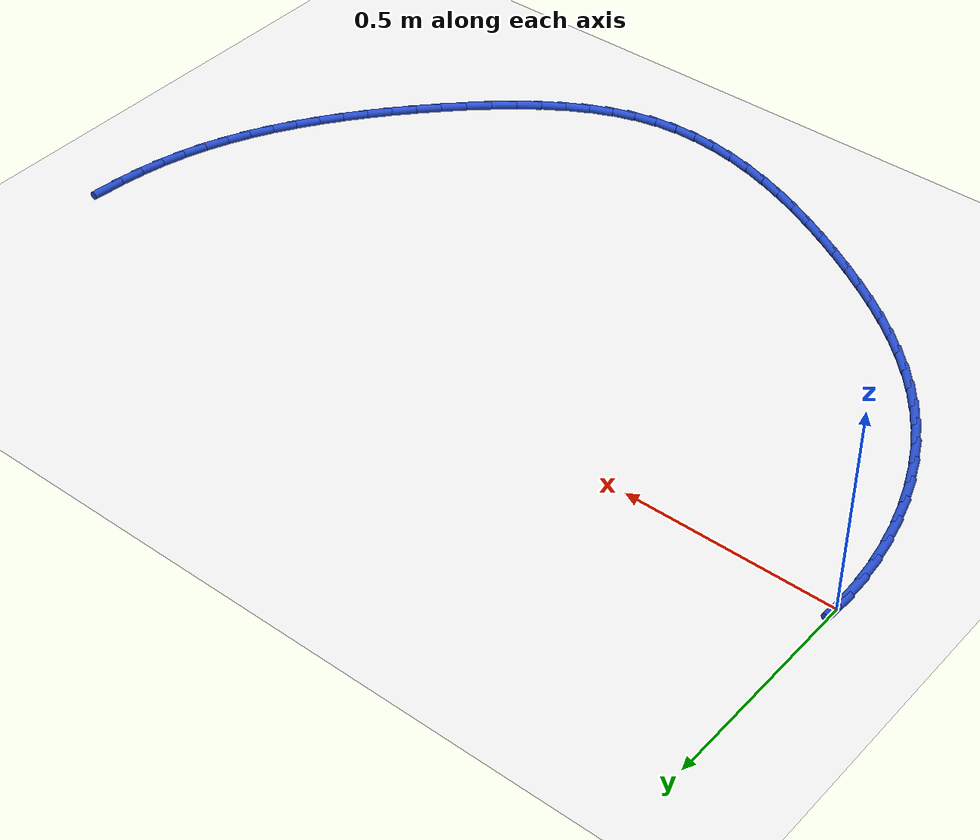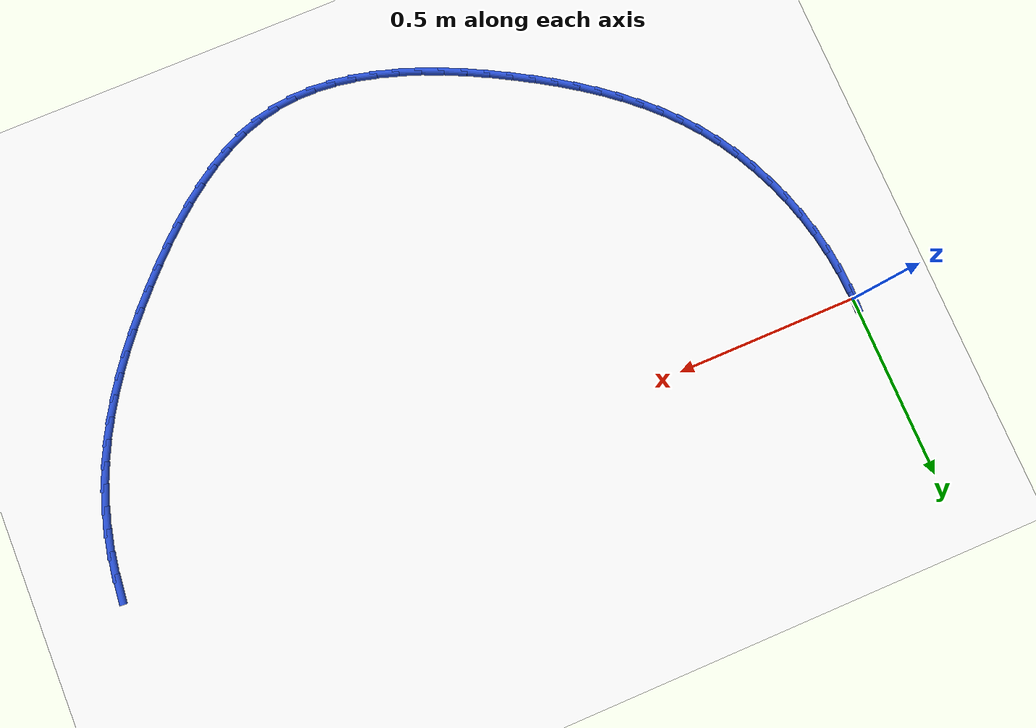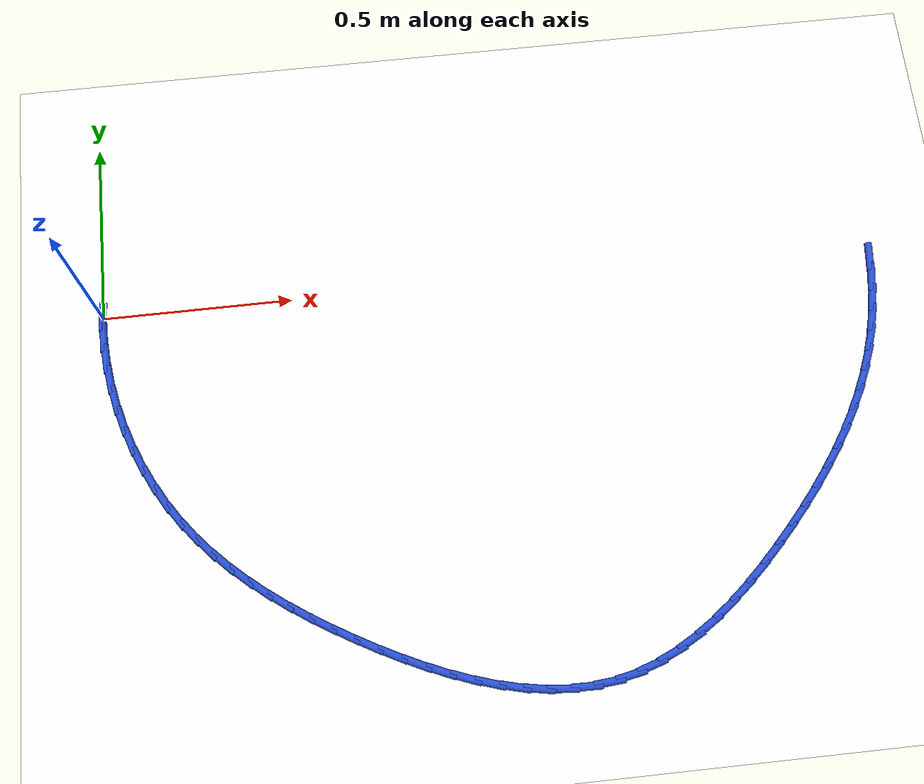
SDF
<sdf version="1.6">
 <world name="default">
  <model name="ground_plane">
   <static>1</static>
   <link name="link">
    <collision name="collision">
     <geometry><plane><normal>0 0 1</normal><size>100 100</size></plane></geometry>
     <surface><friction><ode><mu>100</mu><mu2>50</mu2></ode></friction></surface>
    </collision>
    <visual name="visual">
     <cast_shadows>0</cast_shadows>
     <geometry><plane><normal>0 0 1</normal><size>100 100</size></plane></geometry>
     <material>
      <script><uri>file://media/materials/scripts/gazebo.material</uri><name>Gazebo/WhiteGlow</name></script>
     </material>
    </visual>
   </link>
  </model>
  <model name="line">
   <link name="link_0">
    <pose>3.122502256758253e-17 -1.1102230246251565e-16 0.01 0 1.57 1.5281475733142396</pose>
    <collision name="collision">
     <geometry><cylinder><radius>0.01</radius><length>0.08</length></cylinder></geometry>
    </collision>
    <visual name="visual">
     <material>
      <script><name>Gazebo/Blue</name><uri>file://media/materials/scripts/gazebo.material</uri></script>
     </material>
     <geometry><cylinder><radius>0.01</radius><length>0.08</length></cylinder></geometry>
    </visual>
   </link>
   <link name="link_56">
    <pose>2.0484164536960043 -0.04483751968143751 0.01 0 1.57 1.4692832052845801</pose>
    <collision name="collision">
     <geometry><cylinder><radius>0.01</radius><length>0.08</length></cylinder></geometry>
    </collision>
    <visual name="visual">
     <material>
      <script><name>Gazebo/Blue</name><uri>file://media/materials/scripts/gazebo.material</uri></script>
     </material>
     <geometry><cylinder><radius>0.01</radius><length>0.08</length></cylinder></geometry>
    </visual>
   </link>
   <link name="link_57">
    <pose>2.0424671706451547 -0.10324212091212337 0.01 0 1.57 1.413355843682842</pose>
    <collision name="collision">
     <geometry><cylinder><radius>0.01</radius><length>0.08</length></cylinder></geometry>
    </collision>
    <visual name="visual">
     <material>
      <script><name>Gazebo/Blue</name><uri>file://media/materials/scripts/gazebo.material</uri></script>
     </material>
     <geometry><cylinder><radius>0.01</radius><length>0.08</length></cylinder></geometry>
    </visual>
   </link>
   <link name="link_58">
    <pose>2.0333202582781698 -0.16085888263209372 0.01 0 1.57 1.355518264022626</pose>
    <collision name="collision">
     <geometry><cylinder><radius>0.01</radius><length>0.08</length></cylinder></geometry>
    </collision>
    <visual name="visual">
     <material>
      <script><name>Gazebo/Blue</name><uri>file://media/materials/scripts/gazebo.material</uri></script>
     </material>
     <geometry><cylinder><radius>0.01</radius><length>0.08</length></cylinder></geometry>
    </visual>
   </link>
   <link name="link_59">
    <pose>2.0209240252097755 -0.21754900215102074 0.01 0 1.57 1.295749365009394</pose>
    <collision name="collision">
     <geometry><cylinder><radius>0.01</radius><length>0.08</length></cylinder></geometry>
    </collision>
    <visual name="visual">
     <material>
      <script><name>Gazebo/Blue</name><uri>file://media/materials/scripts/gazebo.material</uri></script>
     </material>
     <geometry><cylinder><radius>0.01</radius><length>0.08</length></cylinder></geometry>
    </visual>
   </link>
   <link name="link_60">
    <pose>2.0052267800547026 -0.2731736767785741 0.01 0 1.57 1.2344053901346357</pose>
    <collision name="collision">
     <geometry><cylinder><radius>0.01</radius><length>0.08</length></cylinder></geometry>
    </collision>
    <visual name="visual">
     <material>
      <script><name>Gazebo/Blue</name><uri>file://media/materials/scripts/gazebo.material</uri></script>
     </material>
     <geometry><cylinder><radius>0.01</radius><length>0.08</length></cylinder></geometry>
    </visual>
   </link>
   <link name="link_61">
    <pose>1.986192594321878 -0.3276066182697751 0.01 0 1.57 1.1746995797125122</pose>
    <collision name="collision">
     <geometry><cylinder><radius>0.01</radius><length>0.08</length></cylinder></geometry>
    </collision>
    <visual name="visual">
     <material>
      <script><name>Gazebo/Blue</name><uri>file://media/materials/scripts/gazebo.material</uri></script>
     </material>
     <geometry><cylinder><radius>0.01</radius><length>0.08</length></cylinder></geometry>
    </visual>
   </link>
   <link name="link_62">
    <pose>1.9639314880401533 -0.3808374095358697 0.01 0 1.57 1.1186034514123755</pose>
    <collision name="collision">
     <geometry><cylinder><radius>0.01</radius><length>0.08</length></cylinder></geometry>
    </collision>
    <visual name="visual">
     <material>
      <script><name>Gazebo/Blue</name><uri>file://media/materials/scripts/gazebo.material</uri></script>
     </material>
     <geometry><cylinder><radius>0.01</radius><length>0.08</length></cylinder></geometry>
    </visual>
   </link>
   <link name="link_63">
    <pose>1.9386325081631703 -0.43291837438574066 0.01 0 1.57 1.0663615371576343</pose>
    <collision name="collision">
     <geometry><cylinder><radius>0.01</radius><length>0.08</length></cylinder></geometry>
    </collision>
    <visual name="visual">
     <material>
      <script><name>Gazebo/Blue</name><uri>file://media/materials/scripts/gazebo.material</uri></script>
     </material>
     <geometry><cylinder><radius>0.01</radius><length>0.08</length></cylinder></geometry>
    </visual>
   </link>
   <link name="link_64">
    <pose>1.9104854798436228 -0.4839024544544982 0.01 0 1.57 1.0180838322904637</pose>
    <collision name="collision">
     <geometry><cylinder><radius>0.01</radius><length>0.08</length></cylinder></geometry>
    </collision>
    <visual name="visual">
     <material>
      <script><name>Gazebo/Blue</name><uri>file://media/materials/scripts/gazebo.material</uri></script>
     </material>
     <geometry><cylinder><radius>0.01</radius><length>0.08</length></cylinder></geometry>
    </visual>
   </link>
   <link name="link_65">
    <pose>1.8796802282342024 -0.5338425913772545 0.01 0 1.57 0.9737840039821778</pose>
    <collision name="collision">
     <geometry><cylinder><radius>0.01</radius><length>0.08</length></cylinder></geometry>
    </collision>
    <visual name="visual">
     <material>
      <script><name>Gazebo/Blue</name><uri>file://media/materials/scripts/gazebo.material</uri></script>
     </material>
     <geometry><cylinder><radius>0.01</radius><length>0.08</length></cylinder></geometry>
    </visual>
   </link>
   <link name="link_66">
    <pose>1.8464065784876018 -0.5827917267891217 0.01 0 1.57 0.9334027073691762</pose>
    <collision name="collision">
     <geometry><cylinder><radius>0.01</radius><length>0.08</length></cylinder></geometry>
    </collision>
    <visual name="visual">
     <material>
      <script><name>Gazebo/Blue</name><uri>file://media/materials/scripts/gazebo.material</uri></script>
     </material>
     <geometry><cylinder><radius>0.01</radius><length>0.08</length></cylinder></geometry>
    </visual>
   </link>
   <link name="link_67">
    <pose>1.8108543557565142 -0.6308028023252104 0.01 0 1.57 0.8968295461689076</pose>
    <collision name="collision">
     <geometry><cylinder><radius>0.01</radius><length>0.08</length></cylinder></geometry>
    </collision>
    <visual name="visual">
     <material>
      <script><name>Gazebo/Blue</name><uri>file://media/materials/scripts/gazebo.material</uri></script>
     </material>
     <geometry><cylinder><radius>0.01</radius><length>0.08</length></cylinder></geometry>
    </visual>
   </link>
   <link name="link_68">
    <pose>1.7732133851936323 -0.6779287596206328 0.01 0 1.57 0.8639221262068307</pose>
    <collision name="collision">
     <geometry><cylinder><radius>0.01</radius><length>0.08</length></cylinder></geometry>
    </collision>
    <visual name="visual">
     <material>
      <script><name>Gazebo/Blue</name><uri>file://media/materials/scripts/gazebo.material</uri></script>
     </material>
     <geometry><cylinder><radius>0.01</radius><length>0.08</length></cylinder></geometry>
    </visual>
   </link>
   <link name="link_69">
    <pose>1.7336734919516492 -0.7242225403104996 0.01 0 1.57 0.8345216026183714</pose>
    <collision name="collision">
     <geometry><cylinder><radius>0.01</radius><length>0.08</length></cylinder></geometry>
    </collision>
    <visual name="visual">
     <material>
      <script><name>Gazebo/Blue</name><uri>file://media/materials/scripts/gazebo.material</uri></script>
     </material>
     <geometry><cylinder><radius>0.01</radius><length>0.08</length></cylinder></geometry>
    </visual>
   </link>
   <link name="link_70">
    <pose>1.6924245011832562 -0.7697370860299235 0.01 0 1.57 0.8076583800019234</pose>
    <collision name="collision">
     <geometry><cylinder><radius>0.01</radius><length>0.08</length></cylinder></geometry>
    </collision>
    <visual name="visual">
     <material>
      <script><name>Gazebo/Blue</name><uri>file://media/materials/scripts/gazebo.material</uri></script>
     </material>
     <geometry><cylinder><radius>0.01</radius><length>0.08</length></cylinder></geometry>
    </visual>
   </link>
   <link name="link_71">
    <pose>1.6496423974872503 -0.814467560499242 0.01 0 1.57 0.7770583739987442</pose>
    <collision name="collision">
     <geometry><cylinder><radius>0.01</radius><length>0.08</length></cylinder></geometry>
    </collision>
    <visual name="visual">
     <material>
      <script><name>Gazebo/Blue</name><uri>file://media/materials/scripts/gazebo.material</uri></script>
     </material>
     <geometry><cylinder><radius>0.01</radius><length>0.08</length></cylinder></geometry>
    </visual>
   </link>
   <link name="link_72">
    <pose>1.6053999303381157 -0.8579781685148915 0.01 0 1.57 0.7394421248329712</pose>
    <collision name="collision">
     <geometry><cylinder><radius>0.01</radius><length>0.08</length></cylinder></geometry>
    </collision>
    <visual name="visual">
     <material>
      <script><name>Gazebo/Blue</name><uri>file://media/materials/scripts/gazebo.material</uri></script>
     </material>
     <geometry><cylinder><radius>0.01</radius><length>0.08</length></cylinder></geometry>
    </visual>
   </link>
   <link name="link_73">
    <pose>1.5597232066231972 -0.8996384036323668 0.01 0 1.57 0.6939960430001978</pose>
    <collision name="collision">
     <geometry><cylinder><radius>0.01</radius><length>0.08</length></cylinder></geometry>
    </collision>
    <visual name="visual">
     <material>
      <script><name>Gazebo/Blue</name><uri>file://media/materials/scripts/gazebo.material</uri></script>
     </material>
     <geometry><cylinder><radius>0.01</radius><length>0.08</length></cylinder></geometry>
    </visual>
   </link>
   <link name="link_74">
    <pose>1.5126381051203313 -0.9388168071554236 0.01 0 1.57 0.6397193387823745</pose>
    <collision name="collision">
     <geometry><cylinder><radius>0.01</radius><length>0.08</length></cylinder></geometry>
    </collision>
    <visual name="visual">
     <material>
      <script><name>Gazebo/Blue</name><uri>file://media/materials/scripts/gazebo.material</uri></script>
     </material>
     <geometry><cylinder><radius>0.01</radius><length>0.08</length></cylinder></geometry>
    </visual>
   </link>
   <link name="link_75">
    <pose>1.464170504607358 -0.9748819203878161 0.01 0 1.57 0.5754522084204704</pose>
    <collision name="collision">
     <geometry><cylinder><radius>0.01</radius><length>0.08</length></cylinder></geometry>
    </collision>
    <visual name="visual">
     <material>
      <script><name>Gazebo/Blue</name><uri>file://media/materials/scripts/gazebo.material</uri></script>
     </material>
     <geometry><cylinder><radius>0.01</radius><length>0.08</length></cylinder></geometry>
    </visual>
   </link>
   <link name="link_76">
    <pose>1.4143462838621141 -1.0072022846332995 0.01 0 1.57 0.4999709932490083</pose>
    <collision name="collision">
     <geometry><cylinder><radius>0.01</radius><length>0.08</length></cylinder></geometry>
    </collision>
    <visual name="visual">
     <material>
      <script><name>Gazebo/Blue</name><uri>file://media/materials/scripts/gazebo.material</uri></script>
     </material>
     <geometry><cylinder><radius>0.01</radius><length>0.08</length></cylinder></geometry>
    </visual>
   </link>
   <link name="link_77">
    <pose>1.3631913216624396 -1.0351464411956284 0.01 0 1.57 0.412175489866805</pose>
    <collision name="collision">
     <geometry><cylinder><radius>0.01</radius><length>0.08</length></cylinder></geometry>
    </collision>
    <visual name="visual">
     <material>
      <script><name>Gazebo/Blue</name><uri>file://media/materials/scripts/gazebo.material</uri></script>
     </material>
     <geometry><cylinder><radius>0.01</radius><length>0.08</length></cylinder></geometry>
    </visual>
   </link>
   <link name="link_78">
    <pose>1.3107314967861712 -1.0580829313785578 0.01 0 1.57 0.31140598905189837</pose>
    <collision name="collision">
     <geometry><cylinder><radius>0.01</radius><length>0.08</length></cylinder></geometry>
    </collision>
    <visual name="visual">
     <material>
      <script><name>Gazebo/Blue</name><uri>file://media/materials/scripts/gazebo.material</uri></script>
     </material>
     <geometry><cylinder><radius>0.01</radius><length>0.08</length></cylinder></geometry>
    </visual>
   </link>
   <link name="link_79">
    <pose>1.2569926880111484 -1.0753802964858425 0.01 0 1.57 0.19868603909864413</pose>
    <collision name="collision">
     <geometry><cylinder><radius>0.01</radius><length>0.08</length></cylinder></geometry>
    </collision>
    <visual name="visual">
     <material>
      <script><name>Gazebo/Blue</name><uri>file://media/materials/scripts/gazebo.material</uri></script>
     </material>
     <geometry><cylinder><radius>0.01</radius><length>0.08</length></cylinder></geometry>
    </visual>
   </link>
   <link name="link_80">
    <pose>1.2020088909047792 -1.0864508686660088 0.01 0 1.57 0.08657475121963101</pose>
    <collision name="collision">
     <geometry><cylinder><radius>0.01</radius><length>0.08</length></cylinder></geometry>
    </collision>
    <visual name="visual">
     <material>
      <script><name>Gazebo/Blue</name><uri>file://media/materials/scripts/gazebo.material</uri></script>
     </material>
     <geometry><cylinder><radius>0.01</radius><length>0.08</length></cylinder></geometry>
    </visual>
   </link>
   <link name="link_81">
    <pose>1.1459274069166427 -1.0913182759813387 0.01 0 1.57 -0.015153933500533474</pose>
    <collision name="collision">
     <geometry><cylinder><radius>0.01</radius><length>0.08</length></cylinder></geometry>
    </collision>
    <visual name="visual">
     <material>
      <script><name>Gazebo/Blue</name><uri>file://media/materials/scripts/gazebo.material</uri></script>
     </material>
     <geometry><cylinder><radius>0.01</radius><length>0.08</length></cylinder></geometry>
    </visual>
   </link>
   <link name="link_82">
    <pose>1.0889787737848207 -1.0904552141159032 0.01 0 1.57 -0.10571948256804888</pose>
    <collision name="collision">
     <geometry><cylinder><radius>0.01</radius><length>0.08</length></cylinder></geometry>
    </collision>
    <visual name="visual">
     <material>
      <script><name>Gazebo/Blue</name><uri>file://media/materials/scripts/gazebo.material</uri></script>
     </material>
     <geometry><cylinder><radius>0.01</radius><length>0.08</length></cylinder></geometry>
    </visual>
   </link>
   <link name="link_83">
    <pose>1.0313954522313011 -1.084344753433189 0.01 0 1.57 -0.18538957713993742</pose>
    <collision name="collision">
     <geometry><cylinder><radius>0.01</radius><length>0.08</length></cylinder></geometry>
    </collision>
    <visual name="visual">
     <material>
      <script><name>Gazebo/Blue</name><uri>file://media/materials/scripts/gazebo.material</uri></script>
     </material>
     <geometry><cylinder><radius>0.01</radius><length>0.08</length></cylinder></geometry>
    </visual>
   </link>
   <link name="link_84">
    <pose>0.9734099029780727 -1.0734699642966814 0.01 0 1.57 -0.25494241224563713</pose>
    <collision name="collision">
     <geometry><cylinder><radius>0.01</radius><length>0.08</length></cylinder></geometry>
    </collision>
    <visual name="visual">
     <material>
      <script><name>Gazebo/Blue</name><uri>file://media/materials/scripts/gazebo.material</uri></script>
     </material>
     <geometry><cylinder><radius>0.01</radius><length>0.08</length></cylinder></geometry>
    </visual>
   </link>
   <link name="link_85">
    <pose>0.9152545867471218 -1.0583139170698657 0.01 0 1.57 -0.31538566470373763</pose>
    <collision name="collision">
     <geometry><cylinder><radius>0.01</radius><length>0.08</length></cylinder></geometry>
    </collision>
    <visual name="visual">
     <material>
      <script><name>Gazebo/Blue</name><uri>file://media/materials/scripts/gazebo.material</uri></script>
     </material>
     <geometry><cylinder><radius>0.01</radius><length>0.08</length></cylinder></geometry>
    </visual>
   </link>
   <link name="link_86">
    <pose>0.8571619642604376 -1.0393596821162276 0.01 0 1.57 -0.367769906270397</pose>
    <collision name="collision">
     <geometry><cylinder><radius>0.01</radius><length>0.08</length></cylinder></geometry>
    </collision>
    <visual name="visual">
     <material>
      <script><name>Gazebo/Blue</name><uri>file://media/materials/scripts/gazebo.material</uri></script>
     </material>
     <geometry><cylinder><radius>0.01</radius><length>0.08</length></cylinder></geometry>
    </visual>
   </link>
   <link name="link_87">
    <pose>0.7993644962400068 -1.0170903297992522 0.01 0 1.57 -0.41308205396389364</pose>
    <collision name="collision">
     <geometry><cylinder><radius>0.01</radius><length>0.08</length></cylinder></geometry>
    </collision>
    <visual name="visual">
     <material>
      <script><name>Gazebo/Blue</name><uri>file://media/materials/scripts/gazebo.material</uri></script>
     </material>
     <geometry><cylinder><radius>0.01</radius><length>0.08</length></cylinder></geometry>
    </visual>
   </link>
   <link name="link_88">
    <pose>0.7420946434078187 -0.9919889304824262 0.01 0 1.57 -0.4521935230526196</pose>
    <collision name="collision">
     <geometry><cylinder><radius>0.01</radius><length>0.08</length></cylinder></geometry>
    </collision>
    <visual name="visual">
     <material>
      <script><name>Gazebo/Blue</name><uri>file://media/materials/scripts/gazebo.material</uri></script>
     </material>
     <geometry><cylinder><radius>0.01</radius><length>0.08</length></cylinder></geometry>
    </visual>
   </link>
   <link name="link_89">
    <pose>0.6855848664858597 -0.9645385545292341 0.01 0 1.57 -0.4858406674345058</pose>
    <collision name="collision">
     <geometry><cylinder><radius>0.01</radius><length>0.08</length></cylinder></geometry>
    </collision>
    <visual name="visual">
     <material>
      <script><name>Gazebo/Blue</name><uri>file://media/materials/scripts/gazebo.material</uri></script>
     </material>
     <geometry><cylinder><radius>0.01</radius><length>0.08</length></cylinder></geometry>
    </visual>
   </link>
   <link name="link_90">
    <pose>0.630067626196119 -0.9352222723031622 0.01 0 1.57 -0.5146280048575615</pose>
    <collision name="collision">
     <geometry><cylinder><radius>0.01</radius><length>0.08</length></cylinder></geometry>
    </collision>
    <visual name="visual">
     <material>
      <script><name>Gazebo/Blue</name><uri>file://media/materials/scripts/gazebo.material</uri></script>
     </material>
     <geometry><cylinder><radius>0.01</radius><length>0.08</length></cylinder></geometry>
    </visual>
   </link>
   <link name="link_91">
    <pose>0.5757753371185445 -0.9045226673530948 0.01 0 1.57 -0.5412780214676882</pose>
    <collision name="collision">
     <geometry><cylinder><radius>0.01</radius><length>0.08</length></cylinder></geometry>
    </collision>
    <visual name="visual">
     <material>
      <script><name>Gazebo/Blue</name><uri>file://media/materials/scripts/gazebo.material</uri></script>
     </material>
     <geometry><cylinder><radius>0.01</radius><length>0.08</length></cylinder></geometry>
    </visual>
   </link>
   <link name="link_92">
    <pose>0.5229240978039386 -0.8727501834293578 0.01 0 1.57 -0.5716650371267212</pose>
    <collision name="collision">
     <geometry><cylinder><radius>0.01</radius><length>0.08</length></cylinder></geometry>
    </collision>
    <visual name="visual">
     <material>
      <script><name>Gazebo/Blue</name><uri>file://media/materials/scripts/gazebo.material</uri></script>
     </material>
     <geometry><cylinder><radius>0.01</radius><length>0.08</length></cylinder></geometry>
    </visual>
   </link>
   <link name="link_93">
    <pose>0.4716897049149411 -0.8397900653048447 0.01 0 1.57 -0.6068268292088653</pose>
    <collision name="collision">
     <geometry><cylinder><radius>0.01</radius><length>0.08</length></cylinder></geometry>
    </collision>
    <visual name="visual">
     <material>
      <script><name>Gazebo/Blue</name><uri>file://media/materials/scripts/gazebo.material</uri></script>
     </material>
     <geometry><cylinder><radius>0.01</radius><length>0.08</length></cylinder></geometry>
    </visual>
   </link>
   <link name="link_94">
    <pose>0.4222418416246455 -0.8054630583053238 0.01 0 1.57 -0.6469207807166143</pose>
    <collision name="collision">
     <geometry><cylinder><radius>0.01</radius><length>0.08</length></cylinder></geometry>
    </collision>
    <visual name="visual">
     <material>
      <script><name>Gazebo/Blue</name><uri>file://media/materials/scripts/gazebo.material</uri></script>
     </material>
     <geometry><cylinder><radius>0.01</radius><length>0.08</length></cylinder></geometry>
    </visual>
   </link>
   <link name="link_95">
    <pose>0.37475019110614294 -0.7695899077565619 0.01 0 1.57 -0.6920492030105115</pose>
    <collision name="collision">
     <geometry><cylinder><radius>0.01</radius><length>0.08</length></cylinder></geometry>
    </collision>
    <visual name="visual">
     <material>
      <script><name>Gazebo/Blue</name><uri>file://media/materials/scripts/gazebo.material</uri></script>
     </material>
     <geometry><cylinder><radius>0.01</radius><length>0.08</length></cylinder></geometry>
    </visual>
   </link>
   <link name="link_96">
    <pose>0.32938443653252697 -0.7319913589843279 0.01 0 1.57 -0.7422273777096124</pose>
    <collision name="collision">
     <geometry><cylinder><radius>0.01</radius><length>0.08</length></cylinder></geometry>
    </collision>
    <visual name="visual">
     <material>
      <script><name>Gazebo/Blue</name><uri>file://media/materials/scripts/gazebo.material</uri></script>
     </material>
     <geometry><cylinder><radius>0.01</radius><length>0.08</length></cylinder></geometry>
    </visual>
   </link>
   <link name="link_97">
    <pose>0.28631426107688945 -0.6924881573143892 0.01 0 1.57 -0.7973476117632723</pose>
    <collision name="collision">
     <geometry><cylinder><radius>0.01</radius><length>0.08</length></cylinder></geometry>
    </collision>
    <visual name="visual">
     <material>
      <script><name>Gazebo/Blue</name><uri>file://media/materials/scripts/gazebo.material</uri></script>
     </material>
     <geometry><cylinder><radius>0.01</radius><length>0.08</length></cylinder></geometry>
    </visual>
   </link>
   <link name="link_98">
    <pose>0.24570934791232232 -0.6509010480725131 0.01 0 1.57 -0.8571433819760507</pose>
    <collision name="collision">
     <geometry><cylinder><radius>0.01</radius><length>0.08</length></cylinder></geometry>
    </collision>
    <visual name="visual">
     <material>
      <script><name>Gazebo/Blue</name><uri>file://media/materials/scripts/gazebo.material</uri></script>
     </material>
     <geometry><cylinder><radius>0.01</radius><length>0.08</length></cylinder></geometry>
    </visual>
   </link>
   <link name="link_99">
    <pose>0.20773938021191904 -0.6070507765844689 0.01 0 1.57 -0.9211601216225485</pose>
    <collision name="collision">
     <geometry><cylinder><radius>0.01</radius><length>0.08</length></cylinder></geometry>
    </collision>
    <visual name="visual">
     <material>
      <script><name>Gazebo/Blue</name><uri>file://media/materials/scripts/gazebo.material</uri></script>
     </material>
     <geometry><cylinder><radius>0.01</radius><length>0.08</length></cylinder></geometry>
    </visual>
   </link>
   <link name="link_100">
    <pose>0.17257404114877098 -0.5607580881760228 0.01 0 1.57 -0.9885412553461358</pose>
    <collision name="collision">
     <geometry><cylinder><radius>0.01</radius><length>0.08</length></cylinder></geometry>
    </collision>
    <visual name="visual">
     <material>
      <script><name>Gazebo/Blue</name><uri>file://media/materials/scripts/gazebo.material</uri></script>
     </material>
     <geometry><cylinder><radius>0.01</radius><length>0.08</length></cylinder></geometry>
    </visual>
   </link>
   <link name="link_101">
    <pose>0.14038021175030405 -0.5118607437459655 0.01 0 1.57 -1.0555538103115363</pose>
    <collision name="collision">
     <geometry><cylinder><radius>0.01</radius><length>0.08</length></cylinder></geometry>
    </collision>
    <visual name="visual">
     <material>
      <script><name>Gazebo/Blue</name><uri>file://media/materials/scripts/gazebo.material</uri></script>
     </material>
     <geometry><cylinder><radius>0.01</radius><length>0.08</length></cylinder></geometry>
    </visual>
   </link>
   <link name="link_102">
    <pose>0.1112797022838364 -0.4604701890406016 0.01 0 1.57 -1.1199871262050878</pose>
    <collision name="collision">
     <geometry><cylinder><radius>0.01</radius><length>0.08</length></cylinder></geometry>
    </collision>
    <visual name="visual">
     <material>
      <script><name>Gazebo/Blue</name><uri>file://media/materials/scripts/gazebo.material</uri></script>
     </material>
     <geometry><cylinder><radius>0.01</radius><length>0.08</length></cylinder></geometry>
    </visual>
   </link>
   <link name="link_103">
    <pose>0.08535794662048266 -0.40691875954550805 0.01 0 1.57 -1.182388760263707</pose>
    <collision name="collision">
     <geometry><cylinder><radius>0.01</radius><length>0.08</length></cylinder></geometry>
    </collision>
    <visual name="visual">
     <material>
      <script><name>Gazebo/Blue</name><uri>file://media/materials/scripts/gazebo.material</uri></script>
     </material>
     <geometry><cylinder><radius>0.01</radius><length>0.08</length></cylinder></geometry>
    </visual>
   </link>
   <link name="link_104">
    <pose>0.06269934043328763 -0.3515450950348814 0.01 0 1.57 -1.2433795845220816</pose>
    <collision name="collision">
     <geometry><cylinder><radius>0.01</radius><length>0.08</length></cylinder></geometry>
    </collision>
    <visual name="visual">
     <material>
      <script><name>Gazebo/Blue</name><uri>file://media/materials/scripts/gazebo.material</uri></script>
     </material>
     <geometry><cylinder><radius>0.01</radius><length>0.08</length></cylinder></geometry>
    </visual>
   </link>
   <link name="link_105">
    <pose>0.04338827939529728 -0.29468783528292025 0.01 0 1.57 -1.3035763418799837</pose>
    <collision name="collision">
     <geometry><cylinder><radius>0.01</radius><length>0.08</length></cylinder></geometry>
    </collision>
    <visual name="visual">
     <material>
      <script><name>Gazebo/Blue</name><uri>file://media/materials/scripts/gazebo.material</uri></script>
     </material>
     <geometry><cylinder><radius>0.01</radius><length>0.08</length></cylinder></geometry>
    </visual>
   </link>
   <link name="link_106">
    <pose>0.027509159179556535 -0.23668562006382096 0.01 0 1.57 -1.3635925490082603</pose>
    <collision name="collision">
     <geometry><cylinder><radius>0.01</radius><length>0.08</length></cylinder></geometry>
    </collision>
    <visual name="visual">
     <material>
      <script><name>Gazebo/Blue</name><uri>file://media/materials/scripts/gazebo.material</uri></script>
     </material>
     <geometry><cylinder><radius>0.01</radius><length>0.08</length></cylinder></geometry>
    </visual>
   </link>
   <link name="link_107">
    <pose>0.01514637545911118 -0.1778770891517823 0.01 0 1.57 -1.4240416849639954</pose>
    <collision name="collision">
     <geometry><cylinder><radius>0.01</radius><length>0.08</length></cylinder></geometry>
    </collision>
    <visual name="visual">
     <material>
      <script><name>Gazebo/Blue</name><uri>file://media/materials/scripts/gazebo.material</uri></script>
     </material>
     <geometry><cylinder><radius>0.01</radius><length>0.08</length></cylinder></geometry>
    </visual>
   </link>
   <link name="link_108">
    <pose>0.006384323907006275 -0.1186008823210004 0.01 0 1.57 -1.485540935462233</pose>
    <collision name="collision">
     <geometry><cylinder><radius>0.01</radius><length>0.08</length></cylinder></geometry>
    </collision>
    <visual name="visual">
     <material>
      <script><name>Gazebo/Blue</name><uri>file://media/materials/scripts/gazebo.material</uri></script>
     </material>
     <geometry><cylinder><radius>0.01</radius><length>0.08</length></cylinder></geometry>
    </visual>
   </link>
   <link name="link_109">
    <pose>0.0013074001962874674 -0.059195639345674275 0.01 0 1.57 -1.548713827278295</pose>
    <collision name="collision">
     <geometry><cylinder><radius>0.01</radius><length>0.08</length></cylinder></geometry>
    </collision>
    <visual name="visual">
     <material>
      <script><name>Gazebo/Blue</name><uri>file://media/materials/scripts/gazebo.material</uri></script>
     </material>
     <geometry><cylinder><radius>0.01</radius><length>0.08</length></cylinder></geometry>
    </visual>
   </link>
   <link name="link_110">
    <pose>1.734723475976807e-17 4.163336342344337e-17 0.01 0 1.57 1.52740274755339</pose>
    <collision name="collision">
     <geometry><cylinder><radius>0.01</radius><length>0.08</length></cylinder></geometry>
    </collision>
    <visual name="visual">
     <material>
      <script><name>Gazebo/Blue</name><uri>file://media/materials/scripts/gazebo.material</uri></script>
     </material>
     <geometry><cylinder><radius>0.01</radius><length>0.08</length></cylinder></geometry>
    </visual>
   </link>
  </model>
 </world>
</sdf>
